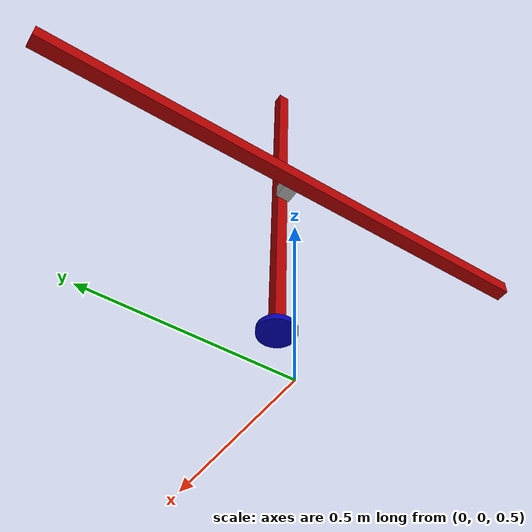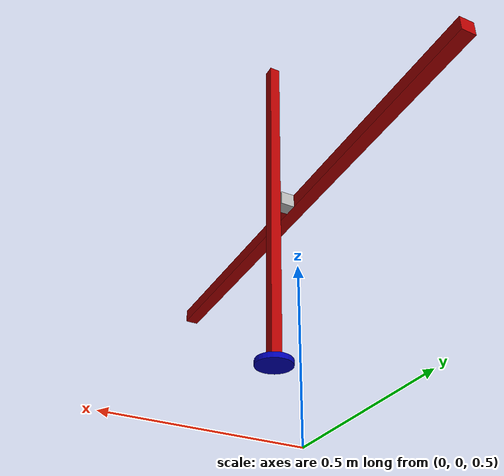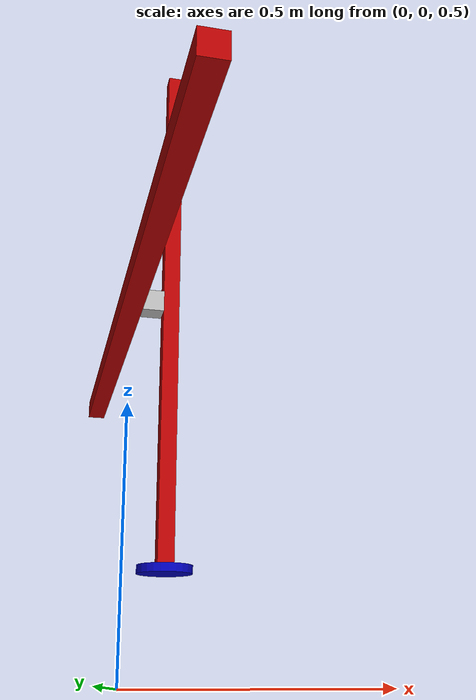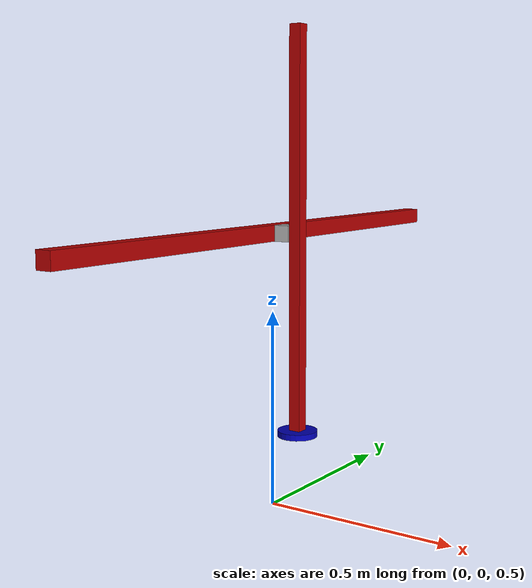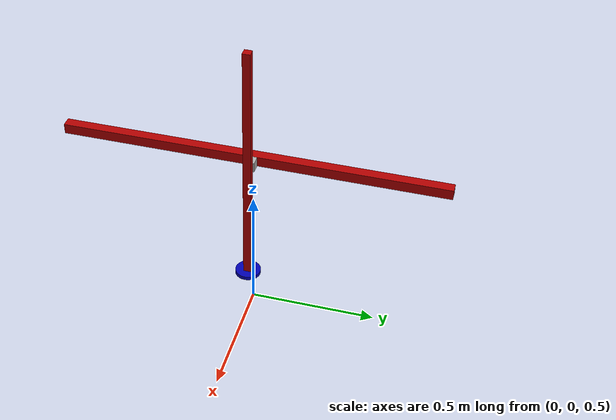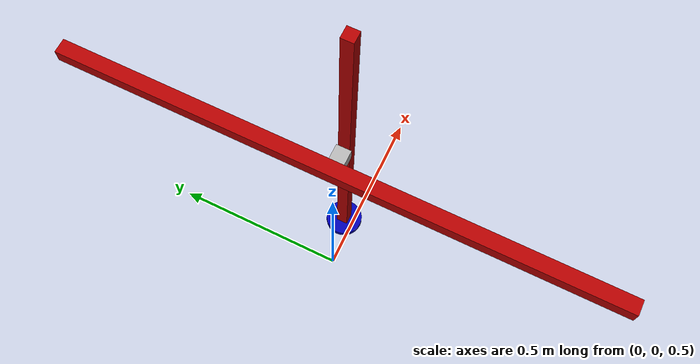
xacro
<?xml version="1.0"?>
<!-- portaal_robot Chain -->
<robot name="portaal_robot" xmlns:xacro="http://ros.org/wiki/xacro">

  <xacro:macro name="cylinder_inertia" params="m r h">
        <inertia  ixx="${m*(3*r*r+h*h)/12}" ixy = "0" ixz = "0"
                    iyy="${m*(3*r*r+h*h)/12}" iyz = "0"
                    izz="${m*r*r/2}" />
  </xacro:macro>

  <xacro:macro name="box_inertia" params="m x y z">
          <inertia  ixx="${m*(y*y+z*z)/12}" ixy = "0" ixz = "0"
                    iyy="${m*(x*x+z*z)/12}" iyz = "0"
                    izz="${m*(x*x+z*z)/12}" />
  </xacro:macro>

  <xacro:macro name="sphere_inertia" params="m r">
          <inertia  ixx="${2*m*r*r/5}" ixy = "0" ixz = "0"
                    iyy="${2*m*r*r/5}" iyz = "0"
                    izz="${2*m*r*r/5}" />
  </xacro:macro>

  <material name="LightGrey">
      <color rgba="0.7 0.7 0.7 1.0" />
  </material>

  <material name="LightRed">
      <color rgba="0.7 0 0 1.0" />
  </material>

  <material name="LightBlue">
      <color rgba="0.0 0 0.7 1.0" />
  </material>

  <!-- World -->
  <link name="world"/>

  <joint name="horizontal_arm_world_joint" type="fixed">
    <parent link="world" />
    <child link="horizontal_arm" />
    <origin xyz="0 0 1.2" rpy="0 0 0" />
  </joint>

  <link name="horizontal_arm">
    <inertial>
      <origin xyz="0 0 0" rpy="0 0 0" />
      <mass value="1"/>
      <xacro:box_inertia m="1" x="0.04" y="1.5" z="0.04"/>
    </inertial>
    <visual>
      <origin xyz="0 0 0" />
      <geometry>
        <box size="0.04 1.5 0.04" />
      </geometry>
      <material name="LightRed"/>
    </visual>
  </link>

  <link name="horizontal_train">
    <inertial>
      <origin xyz="0 0 0" rpy="0 0 0" />
      <mass value="0.1"/>
      <xacro:box_inertia m="0.1" x="0.04" y="0.04" z="0.04"/>
    </inertial>
    <visual>
      <origin xyz="0 0 0" />
      <geometry>
        <box size="0.04 0.04 0.04" />
      </geometry>
      <material name="LightGrey"/>
    </visual>
  </link>

  <joint name="horizontal_arm_joint" type="prismatic">
    <parent link="horizontal_arm" />
    <child link="horizontal_train" />

    <axis xyz="0 1 0" />
    <limit lower="-0.7"
           upper="0.7"
           effort="1000"
           velocity="1" />
    <origin xyz="0.04 0.00 0" rpy="0 0 0" />
    <dynamics damping="20.0" friction="500.0" />
  </joint>

  <link name="vertical_arm">
    <inertial>
      <origin xyz="0 0 0" rpy="0 0 0" />
      <mass value="0.75"/>
      <xacro:box_inertia m="0.75" x="0.043" y="0.03" z="1.0"/>
    </inertial>
    <visual>
      <origin xyz="0 0 0" />
      <geometry>
        <box size="0.03 0.03 1.0" />
      </geometry>
      <material name="LightRed"/>
    </visual>
  </link>

  <joint name="vertical_arm_joint" type="prismatic">
    <parent link="horizontal_train" />
    <child link="vertical_arm" />

    <axis xyz="0 0 1" />
    <limit lower="-0.45"
           upper="0.45"
           effort="1000"
           velocity="1" />
    <origin xyz="0.035 0.00 0" rpy="0 0 0" />
    <dynamics damping="20.0" friction="500.0" />
  </joint>

  <link name="vacuum_gripper">
    <inertial>
      <origin xyz="0 0 0" rpy="0 0 0" />
      <mass value="1"/>
      <xacro:cylinder_inertia m="1" r="1.5" h="0.015"/>
    </inertial>
    <visual>
      <origin xyz="0 0 0" />
      <geometry>
        <cylinder radius="0.05" length="0.015"/>
      </geometry>
      <material name="LightBlue"/>
    </visual>
  </link>

  <joint name="gripper_joint" type="fixed">
    <parent link="vertical_arm" />
    <child link="vacuum_gripper" />

    <origin xyz="0.0 0.0 -0.5" rpy="0 0 0" />
    <dynamics damping="20.0" friction="500.0" />
  </joint>
</robot>
